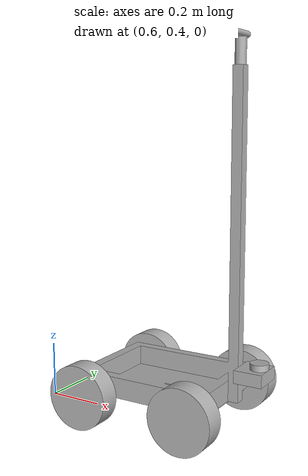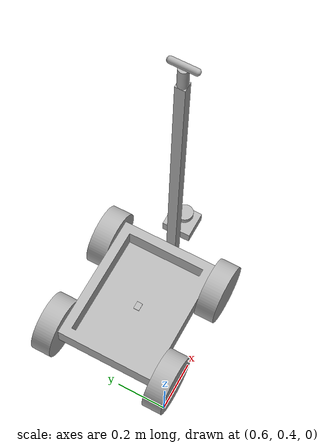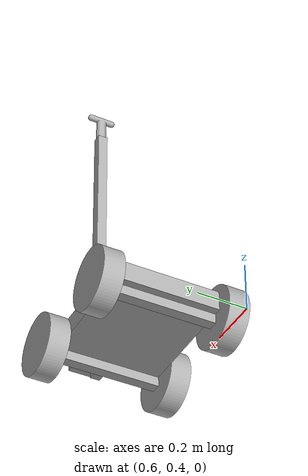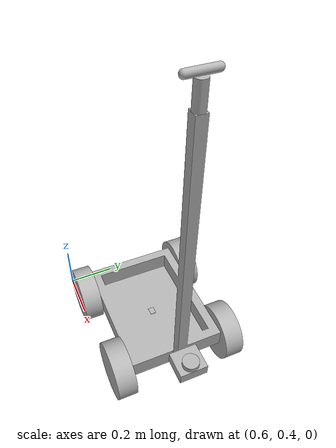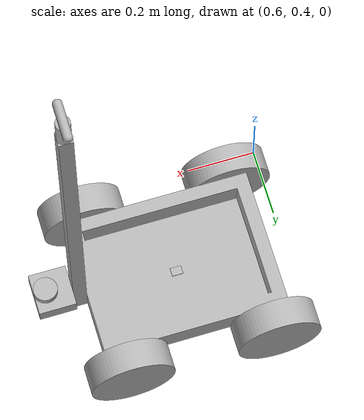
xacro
<?xml version="1.0" ?>
<robot name="Untitled" xmlns:xacro="http://www.ros.org/wiki/xacro">

<xacro:include filename="$(find Untitled_description)/urdf/materials.xacro" />
<xacro:include filename="$(find Untitled_description)/urdf/Untitled.trans" />
<xacro:include filename="$(find Untitled_description)/urdf/Untitled.gazebo" />
<link name="base_link">
  <inertial>
    <origin xyz="0.4240359231871652 0.691999994218356 0.30726005718939287" rpy="0 0 0"/>
    <mass value="61.08266957617942"/>
    <inertia ixx="6.824852" iyy="8.492586" izz="3.973393" ixy="-0.0" iyz="-0.0" ixz="-1.934453"/>
  </inertial>
  <visual>
    <origin xyz="0 0 0" rpy="0 0 0"/>
    <geometry>
      <mesh filename="package://Untitled_description/meshes/base_link.stl" scale="0.001 0.001 0.001"/>
    </geometry>
    <material name="silver"/>
  </visual>
  <collision>
    <origin xyz="0 0 0" rpy="0 0 0"/>
    <geometry>
      <mesh filename="package://Untitled_description/meshes/base_link.stl" scale="0.001 0.001 0.001"/>
    </geometry>
  </collision>
</link>

<link name="RealSense_1">
  <inertial>
    <origin xyz="-0.00019957066713605087 -1.1102230246251565e-16 0.06592185228454595" rpy="0 0 0"/>
    <mass value="1.4144706758788057"/>
    <inertia ixx="0.002392" iyy="0.001913" izz="0.000713" ixy="-0.0" iyz="0.0" ixz="5e-06"/>
  </inertial>
  <visual>
    <origin xyz="-0.64499 -0.692 -1.345" rpy="0 0 0"/>
    <geometry>
      <mesh filename="package://Untitled_description/meshes/RealSense_1.stl" scale="0.001 0.001 0.001"/>
    </geometry>
    <material name="silver"/>
  </visual>
  <collision>
    <origin xyz="-0.64499 -0.692 -1.345" rpy="0 0 0"/>
    <geometry>
      <mesh filename="package://Untitled_description/meshes/RealSense_1.stl" scale="0.001 0.001 0.001"/>
    </geometry>
  </collision>
</link>

<link name="MancalD_1">
  <inertial>
    <origin xyz="0.475 -1.1102230246251565e-16 -0.14500000000000002" rpy="0 0 0"/>
    <mass value="5.2124"/>
    <inertia ixx="0.075504" iyy="0.00139" izz="0.075504" ixy="-0.0" iyz="0.0" ixz="-0.0"/>
  </inertial>
  <visual>
    <origin xyz="-0.09 -0.692 -0.25" rpy="0 0 0"/>
    <geometry>
      <mesh filename="package://Untitled_description/meshes/MancalD_1.stl" scale="0.001 0.001 0.001"/>
    </geometry>
    <material name="silver"/>
  </visual>
  <collision>
    <origin xyz="-0.09 -0.692 -0.25" rpy="0 0 0"/>
    <geometry>
      <mesh filename="package://Untitled_description/meshes/MancalD_1.stl" scale="0.001 0.001 0.001"/>
    </geometry>
  </collision>
</link>

<link name="MancalT_1">
  <inertial>
    <origin xyz="0.625 1.1102230246251565e-16 -0.14500000000000002" rpy="0 0 0"/>
    <mass value="5.2124"/>
    <inertia ixx="0.075504" iyy="0.00139" izz="0.075504" ixy="0.0" iyz="-0.0" ixz="0.0"/>
  </inertial>
  <visual>
    <origin xyz="0.5 -0.692 -0.25" rpy="0 0 0"/>
    <geometry>
      <mesh filename="package://Untitled_description/meshes/MancalT_1.stl" scale="0.001 0.001 0.001"/>
    </geometry>
    <material name="silver"/>
  </visual>
  <collision>
    <origin xyz="0.5 -0.692 -0.25" rpy="0 0 0"/>
    <geometry>
      <mesh filename="package://Untitled_description/meshes/MancalT_1.stl" scale="0.001 0.001 0.001"/>
    </geometry>
  </collision>
</link>

<link name="Lidar_1">
  <inertial>
    <origin xyz="0.5949999999999994 -3.3306690738754696e-16 -0.11346300000000009" rpy="0 0 0"/>
    <mass value="0.7250481685219863"/>
    <inertia ixx="0.000257" iyy="0.000257" izz="0.000444" ixy="-0.0" iyz="-0.0" ixz="-0.0"/>
  </inertial>
  <visual>
    <origin xyz="-0.145 -0.692 -0.389963" rpy="0 0 0"/>
    <geometry>
      <mesh filename="package://Untitled_description/meshes/Lidar_1.stl" scale="0.001 0.001 0.001"/>
    </geometry>
    <material name="silver"/>
  </visual>
  <collision>
    <origin xyz="-0.145 -0.692 -0.389963" rpy="0 0 0"/>
    <geometry>
      <mesh filename="package://Untitled_description/meshes/Lidar_1.stl" scale="0.001 0.001 0.001"/>
    </geometry>
  </collision>
</link>

<link name="Suporte_Lidar_1">
  <inertial>
    <origin xyz="0.63 2.220446049250313e-16 -0.010000000000000009" rpy="0 0 0"/>
    <mass value="5.07738"/>
    <inertia ixx="0.007109" iyy="0.006136" izz="0.011213" ixy="0.0" iyz="0.0" ixz="-0.0"/>
  </inertial>
  <visual>
    <origin xyz="-0.09 -0.692 -0.25" rpy="0 0 0"/>
    <geometry>
      <mesh filename="package://Untitled_description/meshes/Suporte_Lidar_1.stl" scale="0.001 0.001 0.001"/>
    </geometry>
    <material name="silver"/>
  </visual>
  <collision>
    <origin xyz="-0.09 -0.692 -0.25" rpy="0 0 0"/>
    <geometry>
      <mesh filename="package://Untitled_description/meshes/Suporte_Lidar_1.stl" scale="0.001 0.001 0.001"/>
    </geometry>
  </collision>
</link>

<link name="IMU2_1">
  <inertial>
    <origin xyz="8.940696738513054e-09 3.60608110039351e-09 0.0014999999999999736" rpy="0 0 0"/>
    <mass value="0.019428749999999984"/>
    <inertia ixx="1e-06" iyy="2e-06" izz="3e-06" ixy="0.0" iyz="0.0" ixz="0.0"/>
  </inertial>
  <visual>
    <origin xyz="-0.35 -0.692 -0.126" rpy="0 0 0"/>
    <geometry>
      <mesh filename="package://Untitled_description/meshes/IMU2_1.stl" scale="0.001 0.001 0.001"/>
    </geometry>
    <material name="silver"/>
  </visual>
  <collision>
    <origin xyz="-0.35 -0.692 -0.126" rpy="0 0 0"/>
    <geometry>
      <mesh filename="package://Untitled_description/meshes/IMU2_1.stl" scale="0.001 0.001 0.001"/>
    </geometry>
  </collision>
</link>

<link name="RodaDianteiraEsquerda_1">
  <inertial>
    <origin xyz="-1.1102230246251565e-16 0.04149999999999965 -5.551115123125783e-17" rpy="0 0 0"/>
    <mass value="3.789055264540564"/>
    <inertia ixx="0.016976" iyy="0.029602" izz="0.016976" ixy="-0.0" iyz="-0.0" ixz="-0.0"/>
  </inertial>
  <visual>
    <origin xyz="-0.565 -0.8995 -0.125" rpy="0 0 0"/>
    <geometry>
      <mesh filename="package://Untitled_description/meshes/RodaDianteiraEsquerda_1.stl" scale="0.001 0.001 0.001"/>
    </geometry>
    <material name="silver"/>
  </visual>
  <collision>
    <origin xyz="-0.565 -0.8995 -0.125" rpy="0 0 0"/>
    <geometry>
      <mesh filename="package://Untitled_description/meshes/RodaDianteiraEsquerda_1.stl" scale="0.001 0.001 0.001"/>
    </geometry>
  </collision>
</link>

<link name="RodaTraseiraEsquerda_1">
  <inertial>
    <origin xyz="-1.3877787807814457e-16 0.04149999999999998 -4.163336342344337e-17" rpy="0 0 0"/>
    <mass value="3.789055264540563"/>
    <inertia ixx="0.016976" iyy="0.029602" izz="0.016976" ixy="-0.0" iyz="-0.0" ixz="-0.0"/>
  </inertial>
  <visual>
    <origin xyz="-0.125 -0.8995 -0.125" rpy="0 0 0"/>
    <geometry>
      <mesh filename="package://Untitled_description/meshes/RodaTraseiraEsquerda_1.stl" scale="0.001 0.001 0.001"/>
    </geometry>
    <material name="silver"/>
  </visual>
  <collision>
    <origin xyz="-0.125 -0.8995 -0.125" rpy="0 0 0"/>
    <geometry>
      <mesh filename="package://Untitled_description/meshes/RodaTraseiraEsquerda_1.stl" scale="0.001 0.001 0.001"/>
    </geometry>
  </collision>
</link>

<link name="RodaTraseiraDireita_1">
  <inertial>
    <origin xyz="-1.3877787807814457e-16 -0.04150000000000015 -4.163336342344337e-17" rpy="0 0 0"/>
    <mass value="3.789055264540566"/>
    <inertia ixx="0.016976" iyy="0.029602" izz="0.016976" ixy="-0.0" iyz="-0.0" ixz="0.0"/>
  </inertial>
  <visual>
    <origin xyz="-0.125 -0.4845 -0.125" rpy="0 0 0"/>
    <geometry>
      <mesh filename="package://Untitled_description/meshes/RodaTraseiraDireita_1.stl" scale="0.001 0.001 0.001"/>
    </geometry>
    <material name="silver"/>
  </visual>
  <collision>
    <origin xyz="-0.125 -0.4845 -0.125" rpy="0 0 0"/>
    <geometry>
      <mesh filename="package://Untitled_description/meshes/RodaTraseiraDireita_1.stl" scale="0.001 0.001 0.001"/>
    </geometry>
  </collision>
</link>

<link name="RodaDianteiraDireita_1">
  <inertial>
    <origin xyz="-1.1102230246251565e-16 -0.04150000000000009 -4.163336342344337e-17" rpy="0 0 0"/>
    <mass value="3.789055264540567"/>
    <inertia ixx="0.016976" iyy="0.029602" izz="0.016976" ixy="-0.0" iyz="-0.0" ixz="-0.0"/>
  </inertial>
  <visual>
    <origin xyz="-0.565 -0.4845 -0.125" rpy="0 0 0"/>
    <geometry>
      <mesh filename="package://Untitled_description/meshes/RodaDianteiraDireita_1.stl" scale="0.001 0.001 0.001"/>
    </geometry>
    <material name="silver"/>
  </visual>
  <collision>
    <origin xyz="-0.565 -0.4845 -0.125" rpy="0 0 0"/>
    <geometry>
      <mesh filename="package://Untitled_description/meshes/RodaDianteiraDireita_1.stl" scale="0.001 0.001 0.001"/>
    </geometry>
  </collision>
</link>

<joint name="Rigid20" type="fixed">
  <origin xyz="0.64499 0.692 1.345" rpy="0 0 0"/>
  <parent link="base_link"/>
  <child link="RealSense_1"/>
</joint>

<joint name="Rigid21" type="fixed">
  <origin xyz="0.09 0.692 0.25" rpy="0 0 0"/>
  <parent link="base_link"/>
  <child link="MancalD_1"/>
</joint>

<joint name="Rigid22" type="fixed">
  <origin xyz="-0.5 0.692 0.25" rpy="0 0 0"/>
  <parent link="base_link"/>
  <child link="MancalT_1"/>
</joint>

<joint name="Rigid23" type="fixed">
  <origin xyz="0.055 0.0 0.139963" rpy="0 0 0"/>
  <parent link="Suporte_Lidar_1"/>
  <child link="Lidar_1"/>
</joint>

<joint name="Rigid24" type="fixed">
  <origin xyz="0.09 0.692 0.25" rpy="0 0 0"/>
  <parent link="base_link"/>
  <child link="Suporte_Lidar_1"/>
</joint>

<joint name="Rigid25" type="fixed">
  <origin xyz="0.35 0.692 0.126" rpy="0 0 0"/>
  <parent link="base_link"/>
  <child link="IMU2_1"/>
</joint>

<joint name="Rev26" type="continuous">
  <origin xyz="0.475 0.2075 -0.125" rpy="0 0 0"/>
  <parent link="MancalD_1"/>
  <child link="RodaDianteiraEsquerda_1"/>
  <axis xyz="-0.0 1.0 0.0"/>
</joint>

<joint name="Rev27" type="continuous">
  <origin xyz="0.625 0.2075 -0.125" rpy="0 0 0"/>
  <parent link="MancalT_1"/>
  <child link="RodaTraseiraEsquerda_1"/>
  <axis xyz="0.0 1.0 0.0"/>
</joint>

<joint name="Rev28" type="continuous">
  <origin xyz="0.625 -0.2075 -0.125" rpy="0 0 0"/>
  <parent link="MancalT_1"/>
  <child link="RodaTraseiraDireita_1"/>
  <axis xyz="-0.0 -1.0 0.0"/>
</joint>

<joint name="Rev29" type="continuous">
  <origin xyz="0.475 -0.2075 -0.125" rpy="0 0 0"/>
  <parent link="MancalD_1"/>
  <child link="RodaDianteiraDireita_1"/>
  <axis xyz="0.0 -1.0 0.0"/>
</joint>

</robot>

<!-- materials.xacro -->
<robot name="Astolf_urdf" xmlns:xacro="http://www.ros.org/wiki/xacro" >

<material name="silver">
  <color rgba="0.700 0.700 0.700 1.000"/>
</material>

</robot>

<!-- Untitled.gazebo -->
<robot name="Untitled" xmlns:xacro="http://www.ros.org/wiki/xacro" >

<xacro:property name="body_color" value="Gazebo/Silver" />

<gazebo>
  <plugin name="control" filename="libgazebo_ros_control.so"/>
</gazebo>
<gazebo reference="base_link">
  <material>${body_color}</material>
  <mu1>0.2</mu1>
  <mu2>0.2</mu2>
  <selfCollide>true</selfCollide>
  <gravity>true</gravity>
</gazebo>

<gazebo reference="RealSense_1">
  <material>${body_color}</material>
  <mu1>0.2</mu1>
  <mu2>0.2</mu2>
  <selfCollide>true</selfCollide>
</gazebo>

<gazebo reference="MancalD_1">
  <material>${body_color}</material>
  <mu1>0.2</mu1>
  <mu2>0.2</mu2>
  <selfCollide>true</selfCollide>
</gazebo>

<gazebo reference="MancalT_1">
  <material>${body_color}</material>
  <mu1>0.2</mu1>
  <mu2>0.2</mu2>
  <selfCollide>true</selfCollide>
</gazebo>

<gazebo reference="Lidar_1">
  <material>${body_color}</material>
  <mu1>0.2</mu1>
  <mu2>0.2</mu2>
  <selfCollide>true</selfCollide>
</gazebo>

<gazebo reference="Suporte_Lidar_1">
  <material>${body_color}</material>
  <mu1>0.2</mu1>
  <mu2>0.2</mu2>
  <selfCollide>true</selfCollide>
</gazebo>

<gazebo reference="IMU2_1">
  <material>${body_color}</material>
  <mu1>0.2</mu1>
  <mu2>0.2</mu2>
  <selfCollide>true</selfCollide>
</gazebo>

<gazebo reference="RodaDianteiraEsquerda_1">
  <material>${body_color}</material>
  <mu1>0.2</mu1>
  <mu2>0.2</mu2>
  <selfCollide>true</selfCollide>
</gazebo>

<gazebo reference="RodaTraseiraEsquerda_1">
  <material>${body_color}</material>
  <mu1>0.2</mu1>
  <mu2>0.2</mu2>
  <selfCollide>true</selfCollide>
</gazebo>

<gazebo reference="RodaTraseiraDireita_1">
  <material>${body_color}</material>
  <mu1>0.2</mu1>
  <mu2>0.2</mu2>
  <selfCollide>true</selfCollide>
</gazebo>

<gazebo reference="RodaDianteiraDireita_1">
  <material>${body_color}</material>
  <mu1>0.2</mu1>
  <mu2>0.2</mu2>
  <selfCollide>true</selfCollide>
</gazebo>

</robot>
